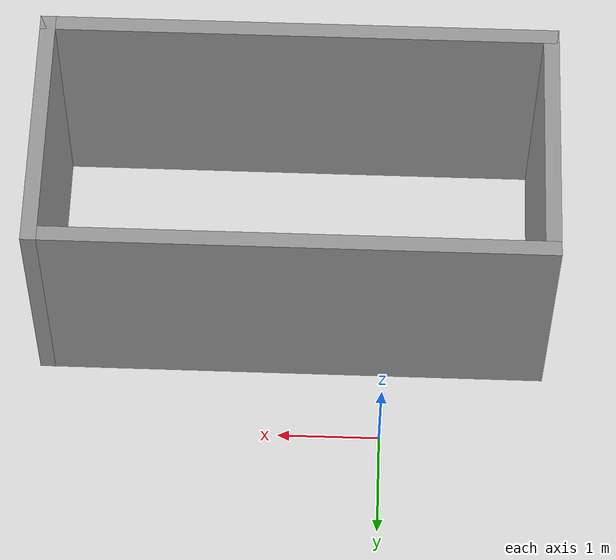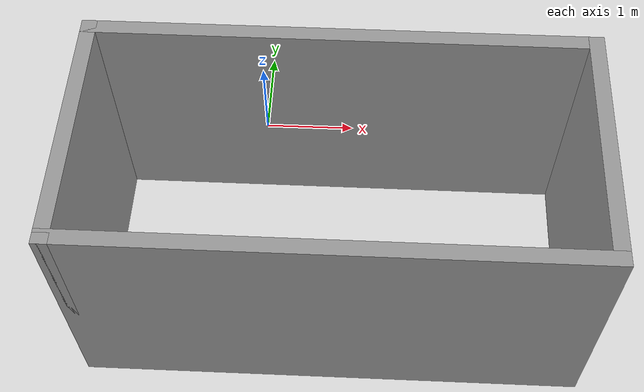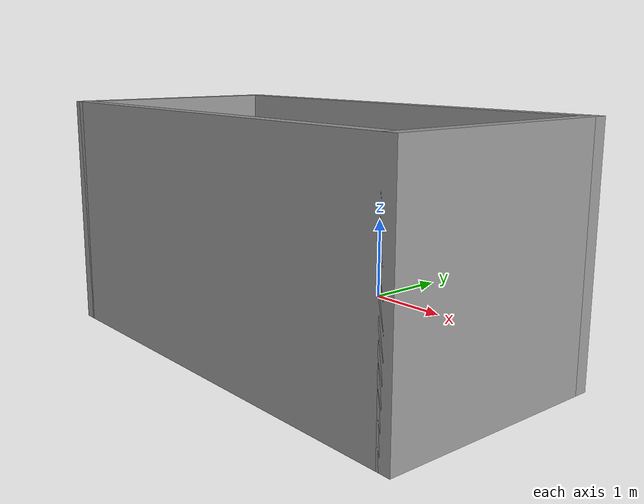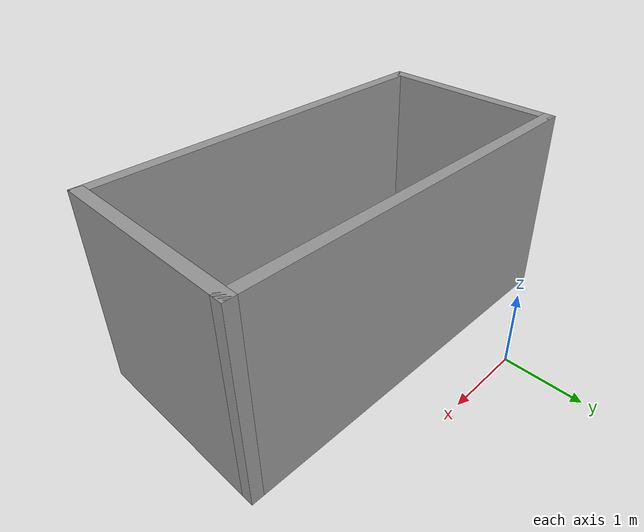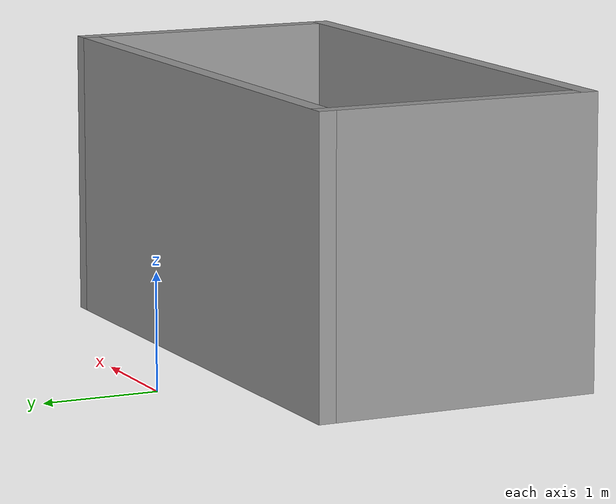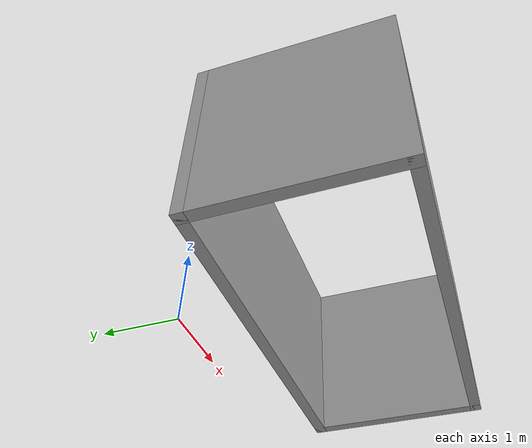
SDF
<?xml version='1.0'?>
<sdf version='1.7'>
  <model name='test_wall'>
    <pose>0.895 -1.5975 0 0 -0 0</pose>
    <link name='Wall_0'>
      <collision name='Wall_0_Collision'>
        <geometry>
          <box>
            <size>2.5 0.15 2.5</size>
          </box>
        </geometry>
        <pose>0 0 1.25 0 -0 0</pose>
      </collision>
      <visual name='Wall_0_Visual'>
        <pose>0 0 1.25 0 -0 0</pose>
        <geometry>
          <box>
            <size>2.5 0.15 2.5</size>
          </box>
        </geometry>
        <material>
          <script>
            <uri>file://media/materials/scripts/gazebo.material</uri>
            <name>Gazebo/Grey</name>
          </script>
          <ambient>1 1 1 1</ambient>
        </material>
        <meta>
          <layer>0</layer>
        </meta>
      </visual>
      <pose>-2.425 -0.3475 0 0 -0 -1.5708</pose>
    </link>
    <link name='Wall_1'>
      <collision name='Wall_1_Collision'>
        <geometry>
          <box>
            <size>5 0.15 2.5</size>
          </box>
        </geometry>
        <pose>0 0 1.25 0 -0 0</pose>
      </collision>
      <visual name='Wall_1_Visual'>
        <pose>0 0 1.25 0 -0 0</pose>
        <geometry>
          <box>
            <size>5 0.15 2.5</size>
          </box>
        </geometry>
        <material>
          <script>
            <uri>file://media/materials/scripts/gazebo.material</uri>
            <name>Gazebo/Grey</name>
          </script>
          <ambient>1 1 1 1</ambient>
        </material>
        <meta>
          <layer>0</layer>
        </meta>
      </visual>
      <pose>0 -1.5225 0 0 -0 0</pose>
    </link>
    <link name='Wall_2'>
      <collision name='Wall_2_Collision'>
        <geometry>
          <box>
            <size>2.5 0.15 2.5</size>
          </box>
        </geometry>
        <pose>0 0 1.25 0 -0 0</pose>
      </collision>
      <visual name='Wall_2_Visual'>
        <pose>0 0 1.25 0 -0 0</pose>
        <geometry>
          <box>
            <size>2.5 0.15 2.5</size>
          </box>
        </geometry>
        <material>
          <script>
            <uri>file://media/materials/scripts/gazebo.material</uri>
            <name>Gazebo/Grey</name>
          </script>
          <ambient>1 1 1 1</ambient>
        </material>
        <meta>
          <layer>0</layer>
        </meta>
      </visual>
      <pose>2.425 -0.3475 0 0 -0 1.5708</pose>
    </link>
    <link name='Wall_3'>
      <collision name='Wall_3_Collision'>
        <geometry>
          <box>
            <size>5 0.15 2.5</size>
          </box>
        </geometry>
        <pose>0 0 1.25 0 -0 0</pose>
      </collision>
      <visual name='Wall_3_Visual'>
        <pose>0 0 1.25 0 -0 0</pose>
        <geometry>
          <box>
            <size>5 0.15 2.5</size>
          </box>
        </geometry>
        <material>
          <script>
            <uri>file://media/materials/scripts/gazebo.material</uri>
            <name>Gazebo/Grey</name>
          </script>
          <ambient>1 1 1 1</ambient>
        </material>
        <meta>
          <layer>0</layer>
        </meta>
      </visual>
      <pose>0 0.8275 0 0 -0 3.14159</pose>
    </link>
    <static>1</static>
  </model>
</sdf>
